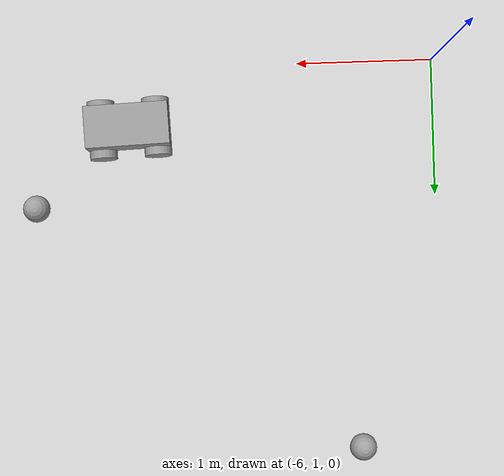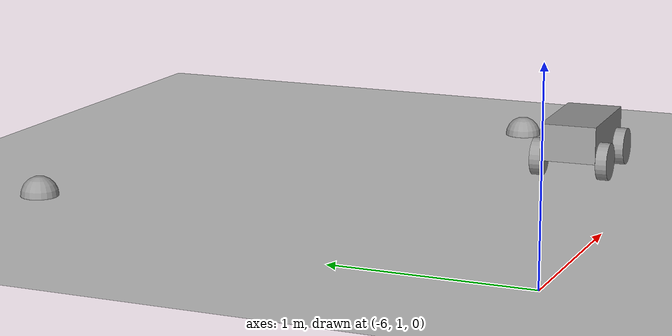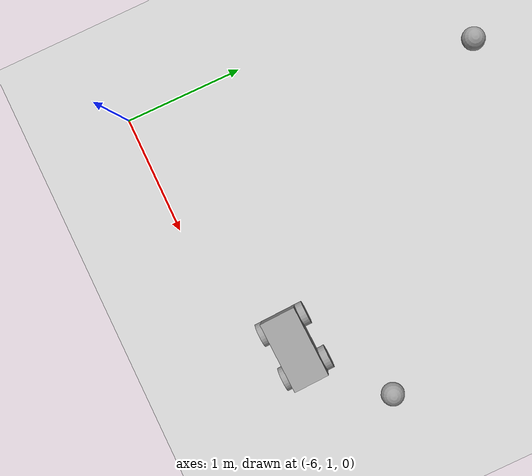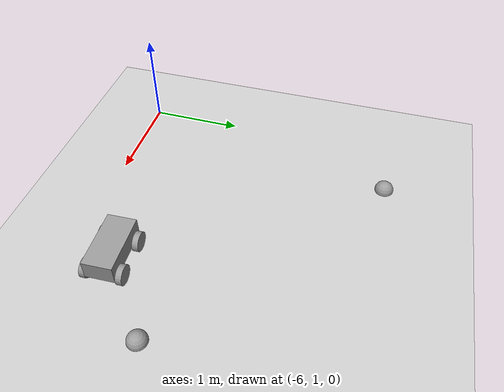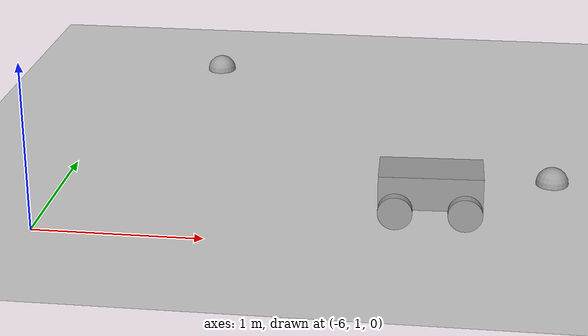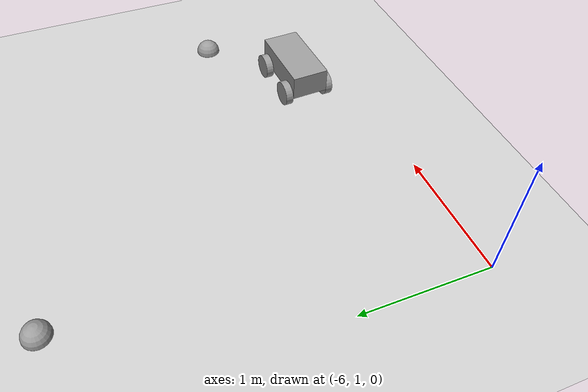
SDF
<sdf version="1.6">
 <world name="default">
  <model name="ground_plane">
   <static>1</static>
   <link name="link">
    <collision name="collision">
     <geometry><plane><normal>0 0 1</normal><size>100 100</size></plane></geometry>
     <surface><friction><ode><mu>100</mu><mu2>50</mu2></ode></friction></surface>
    </collision>
    <visual name="visual">
     <cast_shadows>0</cast_shadows>
     <geometry><plane><normal>0 0 1</normal><size>100 100</size></plane></geometry>
     <material>
      <script><uri>file://media/materials/scripts/gazebo.material</uri><name>Gazebo/Grey</name></script>
     </material>
    </visual>
   </link>
  </model>
  <model name="4wheelrobot">
   <link name="link_0">
    <pose>0 1e-06 0.2 0 -0 0</pose>
    <inertial>
     <mass>1</mass>
     <inertia>
      <ixx>0.166667</ixx>
      <ixy>0</ixy>
      <ixz>0</ixz>
      <iyy>0.166667</iyy>
      <iyz>0</iyz>
      <izz>0.166667</izz>
     </inertia>
    </inertial>
    <visual name="visual">
     <geometry><box><size>0.6 0.3 0.2</size></box></geometry>
     <material>
      <lighting>1</lighting>
      <script><uri>file://media/materials/scripts/gazebo.material</uri><name>Gazebo/Grey</name></script>
      <shader type="pixel"><normal_map>__default__</normal_map></shader>
      <ambient>0.3 0.3 0.3 1</ambient>
      <diffuse>0.7 0.7 0.7 1</diffuse>
      <specular>0.01 0.01 0.01 1</specular>
      <emissive>0 0 0 1</emissive>
     </material>
    </visual>
    <collision name="collision">
     <geometry><box><size>0.6 0.3 0.2</size></box></geometry>
     <surface>
      <friction>
       <ode><mu>1</mu><mu2>1</mu2><fdir1>0 0 0</fdir1><slip1>0</slip1><slip2>0</slip2></ode>
       <torsional>
        <coefficient>1</coefficient>
        <patch_radius>0</patch_radius>
        <surface_radius>0</surface_radius>
        <use_patch_radius>1</use_patch_radius>
        <ode><slip>0</slip></ode>
       </torsional>
      </friction>
      <bounce><restitution_coefficient>0</restitution_coefficient><threshold>1e+06</threshold></bounce>
      <contact>
       <collide_without_contact>0</collide_without_contact>
       <collide_without_contact_bitmask>1</collide_without_contact_bitmask>
       <collide_bitmask>1</collide_bitmask>
       <ode>
        <soft_cfm>0</soft_cfm>
        <soft_erp>0.2</soft_erp>
        <kp>1e+13</kp>
        <kd>1</kd>
        <max_vel>0.01</max_vel>
        <min_depth>0</min_depth>
       </ode>
       <bullet>
        <split_impulse>1</split_impulse>
        <split_impulse_penetration_threshold>-0.01</split_impulse_penetration_threshold>
        <soft_cfm>0</soft_cfm>
        <soft_erp>0.2</soft_erp>
        <kp>1e+13</kp>
        <kd>1</kd>
       </bullet>
      </contact>
     </surface>
    </collision>
   </link>
   <link name="link_1">
    <pose>0.2 -0.180012 0.1 1.5707 -0 0</pose>
    <inertial>
     <mass>1</mass>
     <inertia><ixx>0.145833</ixx><ixy>0</ixy><ixz>0</ixz><iyy>0.145833</iyy><iyz>0</iyz><izz>0.125</izz></inertia>
    </inertial>
    <visual name="visual">
     <geometry><cylinder><radius>0.1</radius><length>0.06</length></cylinder></geometry>
     <material>
      <lighting>1</lighting>
      <script><uri>file://media/materials/scripts/gazebo.material</uri><name>Gazebo/Grey</name></script>
      <shader type="pixel"><normal_map>__default__</normal_map></shader>
      <ambient>0.3 0.3 0.3 1</ambient>
      <diffuse>0.7 0.7 0.7 1</diffuse>
      <specular>0.01 0.01 0.01 1</specular>
      <emissive>0 0 0 1</emissive>
     </material>
    </visual>
    <collision name="collision">
     <geometry><cylinder><radius>0.1</radius><length>0.06</length></cylinder></geometry>
     <surface>
      <friction>
       <ode><mu>1</mu><mu2>1</mu2><fdir1>0 0 0</fdir1><slip1>0</slip1><slip2>0</slip2></ode>
       <torsional>
        <coefficient>1</coefficient>
        <patch_radius>0</patch_radius>
        <surface_radius>0</surface_radius>
        <use_patch_radius>1</use_patch_radius>
        <ode><slip>0</slip></ode>
       </torsional>
      </friction>
      <bounce><restitution_coefficient>0</restitution_coefficient><threshold>1e+06</threshold></bounce>
      <contact>
       <collide_without_contact>0</collide_without_contact>
       <collide_without_contact_bitmask>1</collide_without_contact_bitmask>
       <collide_bitmask>1</collide_bitmask>
       <ode>
        <soft_cfm>0</soft_cfm>
        <soft_erp>0.2</soft_erp>
        <kp>1e+13</kp>
        <kd>1</kd>
        <max_vel>0.01</max_vel>
        <min_depth>0</min_depth>
       </ode>
       <bullet>
        <split_impulse>1</split_impulse>
        <split_impulse_penetration_threshold>-0.01</split_impulse_penetration_threshold>
        <soft_cfm>0</soft_cfm>
        <soft_erp>0.2</soft_erp>
        <kp>1e+13</kp>
        <kd>1</kd>
       </bullet>
      </contact>
     </surface>
    </collision>
   </link>
   <link name="link_1_clone">
    <pose>-0.2 -0.180009 0.1 1.5707 -0 0</pose>
    <inertial>
     <mass>1</mass>
     <inertia><ixx>0.145833</ixx><ixy>0</ixy><ixz>0</ixz><iyy>0.145833</iyy><iyz>0</iyz><izz>0.125</izz></inertia>
    </inertial>
    <visual name="visual">
     <geometry><cylinder><radius>0.1</radius><length>0.06</length></cylinder></geometry>
     <material>
      <lighting>1</lighting>
      <script><uri>file://media/materials/scripts/gazebo.material</uri><name>Gazebo/Grey</name></script>
      <shader type="pixel"><normal_map>__default__</normal_map></shader>
      <ambient>0.3 0.3 0.3 1</ambient>
      <diffuse>0.7 0.7 0.7 1</diffuse>
      <specular>0.01 0.01 0.01 1</specular>
      <emissive>0 0 0 1</emissive>
     </material>
    </visual>
    <collision name="collision">
     <geometry><cylinder><radius>0.1</radius><length>0.06</length></cylinder></geometry>
     <surface>
      <friction>
       <ode><mu>1</mu><mu2>1</mu2><fdir1>0 0 0</fdir1><slip1>0</slip1><slip2>0</slip2></ode>
       <torsional>
        <coefficient>1</coefficient>
        <patch_radius>0</patch_radius>
        <surface_radius>0</surface_radius>
        <use_patch_radius>1</use_patch_radius>
        <ode><slip>0</slip></ode>
       </torsional>
      </friction>
      <bounce><restitution_coefficient>0</restitution_coefficient><threshold>1e+06</threshold></bounce>
      <contact>
       <collide_without_contact>0</collide_without_contact>
       <collide_without_contact_bitmask>1</collide_without_contact_bitmask>
       <collide_bitmask>1</collide_bitmask>
       <ode>
        <soft_cfm>0</soft_cfm>
        <soft_erp>0.2</soft_erp>
        <kp>1e+13</kp>
        <kd>1</kd>
        <max_vel>0.01</max_vel>
        <min_depth>0</min_depth>
       </ode>
       <bullet>
        <split_impulse>1</split_impulse>
        <split_impulse_penetration_threshold>-0.01</split_impulse_penetration_threshold>
        <soft_cfm>0</soft_cfm>
        <soft_erp>0.2</soft_erp>
        <kp>1e+13</kp>
        <kd>1</kd>
       </bullet>
      </contact>
     </surface>
    </collision>
   </link>
   <link name="link_1_clone_0">
    <pose>-0.2 0.18001 0.1 1.5707 -0 0</pose>
    <inertial>
     <mass>1</mass>
     <inertia><ixx>0.145833</ixx><ixy>0</ixy><ixz>0</ixz><iyy>0.145833</iyy><iyz>0</iyz><izz>0.125</izz></inertia>
    </inertial>
    <visual name="visual">
     <geometry><cylinder><radius>0.1</radius><length>0.06</length></cylinder></geometry>
     <material>
      <lighting>1</lighting>
      <script><uri>file://media/materials/scripts/gazebo.material</uri><name>Gazebo/Grey</name></script>
      <shader type="pixel"><normal_map>__default__</normal_map></shader>
      <ambient>0.3 0.3 0.3 1</ambient>
      <diffuse>0.7 0.7 0.7 1</diffuse>
      <specular>0.01 0.01 0.01 1</specular>
      <emissive>0 0 0 1</emissive>
     </material>
    </visual>
    <collision name="collision">
     <geometry><cylinder><radius>0.1</radius><length>0.06</length></cylinder></geometry>
     <surface>
      <friction>
       <ode><mu>1</mu><mu2>1</mu2><fdir1>0 0 0</fdir1><slip1>0</slip1><slip2>0</slip2></ode>
       <torsional>
        <coefficient>1</coefficient>
        <patch_radius>0</patch_radius>
        <surface_radius>0</surface_radius>
        <use_patch_radius>1</use_patch_radius>
        <ode><slip>0</slip></ode>
       </torsional>
      </friction>
      <bounce><restitution_coefficient>0</restitution_coefficient><threshold>1e+06</threshold></bounce>
      <contact>
       <collide_without_contact>0</collide_without_contact>
       <collide_without_contact_bitmask>1</collide_without_contact_bitmask>
       <collide_bitmask>1</collide_bitmask>
       <ode>
        <soft_cfm>0</soft_cfm>
        <soft_erp>0.2</soft_erp>
        <kp>1e+13</kp>
        <kd>1</kd>
        <max_vel>0.01</max_vel>
        <min_depth>0</min_depth>
       </ode>
       <bullet>
        <split_impulse>1</split_impulse>
        <split_impulse_penetration_threshold>-0.01</split_impulse_penetration_threshold>
        <soft_cfm>0</soft_cfm>
        <soft_erp>0.2</soft_erp>
        <kp>1e+13</kp>
        <kd>1</kd>
       </bullet>
      </contact>
     </surface>
    </collision>
   </link>
   <link name="link_1_clone_1">
    <pose>0.2 0.18001 0.1 1.5707 -0 0</pose>
    <inertial>
     <mass>1</mass>
     <inertia><ixx>0.145833</ixx><ixy>0</ixy><ixz>0</ixz><iyy>0.145833</iyy><iyz>0</iyz><izz>0.125</izz></inertia>
    </inertial>
    <visual name="visual">
     <geometry><cylinder><radius>0.1</radius><length>0.06</length></cylinder></geometry>
     <material>
      <lighting>1</lighting>
      <script><uri>file://media/materials/scripts/gazebo.material</uri><name>Gazebo/Grey</name></script>
      <shader type="pixel"><normal_map>__default__</normal_map></shader>
      <ambient>0.3 0.3 0.3 1</ambient>
      <diffuse>0.7 0.7 0.7 1</diffuse>
      <specular>0.01 0.01 0.01 1</specular>
      <emissive>0 0 0 1</emissive>
     </material>
    </visual>
    <collision name="collision">
     <geometry><cylinder><radius>0.1</radius><length>0.06</length></cylinder></geometry>
     <surface>
      <friction>
       <ode><mu>1</mu><mu2>1</mu2><fdir1>0 0 0</fdir1><slip1>0</slip1><slip2>0</slip2></ode>
       <torsional>
        <coefficient>1</coefficient>
        <patch_radius>0</patch_radius>
        <surface_radius>0</surface_radius>
        <use_patch_radius>1</use_patch_radius>
        <ode><slip>0</slip></ode>
       </torsional>
      </friction>
      <bounce><restitution_coefficient>0</restitution_coefficient><threshold>1e+06</threshold></bounce>
      <contact>
       <collide_without_contact>0</collide_without_contact>
       <collide_without_contact_bitmask>1</collide_without_contact_bitmask>
       <collide_bitmask>1</collide_bitmask>
       <ode>
        <soft_cfm>0</soft_cfm>
        <soft_erp>0.2</soft_erp>
        <kp>1e+13</kp>
        <kd>1</kd>
        <max_vel>0.01</max_vel>
        <min_depth>0</min_depth>
       </ode>
       <bullet>
        <split_impulse>1</split_impulse>
        <split_impulse_penetration_threshold>-0.01</split_impulse_penetration_threshold>
        <soft_cfm>0</soft_cfm>
        <soft_erp>0.2</soft_erp>
        <kp>1e+13</kp>
        <kd>1</kd>
       </bullet>
      </contact>
     </surface>
    </collision>
   </link>
   <joint name="link_0_JOINT_0" type="revolute">
    <parent>link_0</parent>
    <child>link_1</child>
    <axis>
     <xyz>0 1 0</xyz>
     <use_parent_model_frame>0</use_parent_model_frame>
     <limit>
      <lower>-1.79769e+308</lower>
      <upper>1.79769e+308</upper>
      <effort>-1</effort>
      <velocity>-1</velocity>
     </limit>
     <dynamics>
      <spring_reference>0</spring_reference>
      <spring_stiffness>0</spring_stiffness>
      <damping>0</damping>
      <friction>0</friction>
     </dynamics>
    </axis>
    <physics>
     <ode><limit><cfm>0</cfm><erp>0.2</erp></limit><suspension><cfm>0</cfm><erp>0.2</erp></suspension></ode>
    </physics>
   </joint>
   <joint name="link_0_JOINT_1" type="revolute">
    <parent>link_0</parent>
    <child>link_1_clone_1</child>
    <axis>
     <xyz>0 1 0</xyz>
     <use_parent_model_frame>0</use_parent_model_frame>
     <limit>
      <lower>-1.79769e+308</lower>
      <upper>1.79769e+308</upper>
      <effort>-1</effort>
      <velocity>-1</velocity>
     </limit>
     <dynamics>
      <spring_reference>0</spring_reference>
      <spring_stiffness>0</spring_stiffness>
      <damping>0</damping>
     </dynamics>
    </axis>
    <physics>
     <ode><limit><cfm>0</cfm><erp>0.2</erp></limit><suspension><cfm>0</cfm><erp>0.2</erp></suspension></ode>
    </physics>
   </joint>
   <joint name="link_0_JOINT_2" type="revolute">
    <parent>link_0</parent>
    <child>link_1_clone</child>
    <axis>
     <xyz>0 1 0</xyz>
     <use_parent_model_frame>0</use_parent_model_frame>
     <limit>
      <lower>-1.79769e+308</lower>
      <upper>1.79769e+308</upper>
      <effort>-1</effort>
      <velocity>-1</velocity>
     </limit>
     <dynamics>
      <spring_reference>0</spring_reference>
      <spring_stiffness>0</spring_stiffness>
      <damping>0</damping>
     </dynamics>
    </axis>
    <physics>
     <ode><limit><cfm>0</cfm><erp>0.2</erp></limit><suspension><cfm>0</cfm><erp>0.2</erp></suspension></ode>
    </physics>
   </joint>
   <joint name="link_0_JOINT_3" type="revolute">
    <parent>link_0</parent>
    <child>link_1_clone_0</child>
    <axis>
     <xyz>0 1 0</xyz>
     <use_parent_model_frame>0</use_parent_model_frame>
     <limit>
      <lower>-1.79769e+308</lower>
      <upper>1.79769e+308</upper>
      <effort>-1</effort>
      <velocity>-1</velocity>
     </limit>
     <dynamics>
      <spring_reference>0</spring_reference>
      <spring_stiffness>0</spring_stiffness>
      <damping>0</damping>
     </dynamics>
    </axis>
    <physics>
     <ode><limit><cfm>0</cfm><erp>0.2</erp></limit><suspension><cfm>0</cfm><erp>0.2</erp></suspension></ode>
    </physics>
   </joint>
   <static>0</static>
   <pose>-3.75175 1.46544 1e-06 -0 5e-06 0.03958</pose>
  </model>
  <model name="my_ball">
   <link name="link_0">
    <inertial>
     <mass>1</mass>
     <inertia><ixx>0.1</ixx><ixy>0</ixy><ixz>0</ixz><iyy>0.1</iyy><iyz>0</iyz><izz>0.1</izz></inertia>
    </inertial>
    <visual name="visual">
     <geometry><sphere><radius>0.1</radius></sphere></geometry>
     <material>
      <lighting>1</lighting>
      <script><uri>file://media/materials/scripts/gazebo.material</uri><name>Gazebo/Grey</name></script>
      <shader type="pixel"><normal_map>__default__</normal_map></shader>
      <ambient>1 1 1 1</ambient>
      <diffuse>1 1 1 1</diffuse>
      <specular>1 1 1 1</specular>
      <emissive>0 0 0 1</emissive>
     </material>
    </visual>
    <collision name="collision">
     <geometry><sphere><radius>0.1</radius></sphere></geometry>
     <surface>
      <friction>
       <ode><mu>1</mu><mu2>1</mu2><fdir1>0 0 0</fdir1><slip1>0</slip1><slip2>0</slip2></ode>
       <torsional>
        <coefficient>1</coefficient>
        <patch_radius>0</patch_radius>
        <surface_radius>0</surface_radius>
        <use_patch_radius>1</use_patch_radius>
        <ode><slip>0</slip></ode>
       </torsional>
      </friction>
      <bounce><restitution_coefficient>0</restitution_coefficient><threshold>1e+06</threshold></bounce>
      <contact>
       <collide_without_contact>0</collide_without_contact>
       <collide_without_contact_bitmask>1</collide_without_contact_bitmask>
       <collide_bitmask>1</collide_bitmask>
       <ode>
        <soft_cfm>0</soft_cfm>
        <soft_erp>0.2</soft_erp>
        <kp>1e+13</kp>
        <kd>1</kd>
        <max_vel>0.01</max_vel>
        <min_depth>0</min_depth>
       </ode>
       <bullet>
        <split_impulse>1</split_impulse>
        <split_impulse_penetration_threshold>-0.01</split_impulse_penetration_threshold>
        <soft_cfm>0</soft_cfm>
        <soft_erp>0.2</soft_erp>
        <kp>1e+13</kp>
        <kd>1</kd>
       </bullet>
      </contact>
     </surface>
    </collision>
   </link>
   <static>0</static>
   <pose>-3.03124 2.02253 0 0 -0 0</pose>
  </model>
  <model name="my_ball_1">
   <link name="link_0">
    <inertial>
     <mass>1</mass>
     <inertia><ixx>0.1</ixx><ixy>0</ixy><ixz>0</ixz><iyy>0.1</iyy><iyz>0</iyz><izz>0.1</izz></inertia>
    </inertial>
    <visual name="visual">
     <geometry><sphere><radius>0.1</radius></sphere></geometry>
     <material>
      <lighting>1</lighting>
      <script><uri>file://media/materials/scripts/gazebo.material</uri><name>Gazebo/Grey</name></script>
      <shader type="pixel"><normal_map>__default__</normal_map></shader>
      <ambient>1 1 1 1</ambient>
      <diffuse>1 1 1 1</diffuse>
      <specular>1 1 1 1</specular>
      <emissive>0 0 0 1</emissive>
     </material>
    </visual>
    <collision name="collision">
     <geometry><sphere><radius>0.1</radius></sphere></geometry>
     <surface>
      <friction>
       <ode><mu>1</mu><mu2>1</mu2><fdir1>0 0 0</fdir1><slip1>0</slip1><slip2>0</slip2></ode>
       <torsional>
        <coefficient>1</coefficient>
        <patch_radius>0</patch_radius>
        <surface_radius>0</surface_radius>
        <use_patch_radius>1</use_patch_radius>
        <ode><slip>0</slip></ode>
       </torsional>
      </friction>
      <bounce><restitution_coefficient>0</restitution_coefficient><threshold>1e+06</threshold></bounce>
      <contact>
       <collide_without_contact>0</collide_without_contact>
       <collide_without_contact_bitmask>1</collide_without_contact_bitmask>
       <collide_bitmask>1</collide_bitmask>
       <ode>
        <soft_cfm>0</soft_cfm>
        <soft_erp>0.2</soft_erp>
        <kp>1e+13</kp>
        <kd>1</kd>
        <max_vel>0.01</max_vel>
        <min_depth>0</min_depth>
       </ode>
       <bullet>
        <split_impulse>1</split_impulse>
        <split_impulse_penetration_threshold>-0.01</split_impulse_penetration_threshold>
        <soft_cfm>0</soft_cfm>
        <soft_erp>0.2</soft_erp>
        <kp>1e+13</kp>
        <kd>1</kd>
       </bullet>
      </contact>
     </surface>
    </collision>
   </link>
   <static>0</static>
   <pose>-5.41061 3.86829 0 0 -0 0</pose>
   <plugin filename="libcollision_map_creator.so" name="collision_map_creator"/>
  </model>
 </world>
</sdf>
